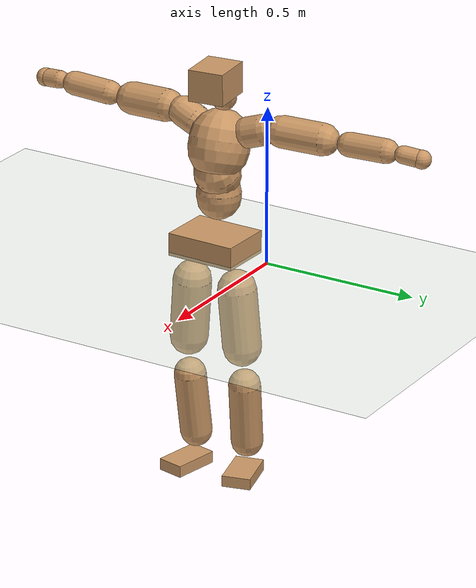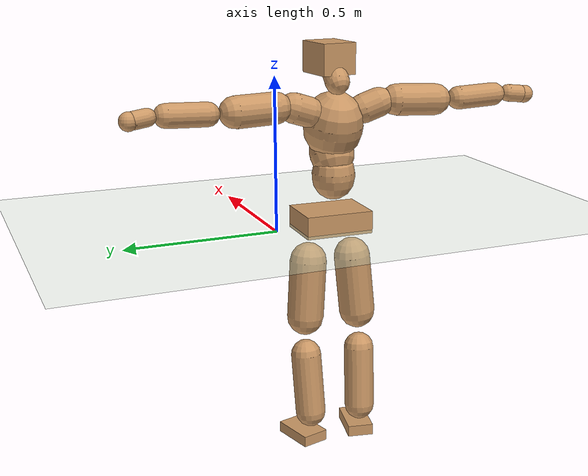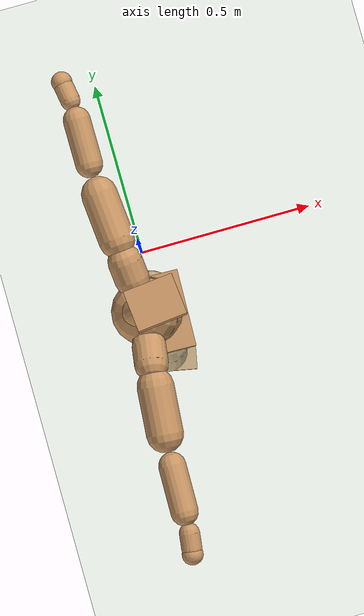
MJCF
<mujoco model="humanoid">
  <compiler coordinate="local" angle="radian"/>
  <default>
    <joint damping="0.0" armature="0.01" stiffness="0.0" limited="true"/>
    <geom conaffinity="1" condim="3" contype="7" margin="0.001" rgba="0.8 0.6 .4 1"/>
  </default>
  <asset>
    <texture type="skybox" builtin="gradient" rgb1=".4 .5 .6" rgb2="0 0 0" width="100" height="100"/>
    <texture builtin="flat" height="1278" mark="cross" markrgb="1 1 1" name="texgeom" random="0.01" rgb1="0.8 0.6 0.4" rgb2="0.8 0.6 0.4" type="cube" width="127"/>
    <texture builtin="checker" height="100" name="texplane" rgb1="0 0 0" rgb2="0.8 0.8 0.8" type="2d" width="100"/>
    <material name="MatPlane" reflectance="0.5" shininess="1" specular="1" texrepeat="60 60" texture="texplane"/>
    <material name="geom" texture="texgeom" texuniform="true"/>
  </asset>
  <worldbody>
    <light cutoff="100" diffuse="1 1 1" dir="-0 0 -1.3" directional="true" exponent="1" pos="0 0 1.3" specular=".1 .1 .1"/>
    <geom conaffinity="1" condim="3" name="floor" pos="0 0 0" rgba="0.8 0.9 0.8 1" size="100 100 .2" type="plane" material="MatPlane"/>
    <body name="Pelvis" pos="0.0002 -0.1865 0.0359">
      <freejoint name="Pelvis"/>
      <geom type="box" contype="1" conaffinity="1" density="500" pos="-0.0040 0.0001 -0.0116" size="0.0856 0.1119 0.0365" quat="0.9999 0.0000 0.0000 -0.0128" name="Pelvis"/>
      <body name="L_Hip" pos="-0.0004 0.0745 -0.081">
        <joint name="L_Hip_x" type="hinge" pos="0 0 0" axis="1 0 0" stiffness="800" damping="80" armature="0.02" range="-180.0000 180.0000"/>
        <joint name="L_Hip_y" type="hinge" pos="0 0 0" axis="0 1 0" stiffness="800" damping="80" armature="0.02" range="-180.0000 180.0000"/>
        <joint name="L_Hip_z" type="hinge" pos="0 0 0" axis="0 0 1" stiffness="800" damping="80" armature="0.02" range="-180.0000 180.0000"/>
        <geom type="capsule" contype="1" conaffinity="1" density="500" fromto="-0.0022 0.0047 -0.0641 -0.0089 0.0188 -0.2565" size="0.0604" name="L_Hip"/>
        <body name="L_Knee" pos="-0.0111 0.0234 -0.3206">
          <joint name="L_Knee_x" type="hinge" pos="0 0 0" axis="1 0 0" stiffness="800" damping="80" armature="0.02" range="-180.0000 180.0000"/>
          <joint name="L_Knee_y" type="hinge" pos="0 0 0" axis="0 1 0" stiffness="800" damping="80" armature="0.02" range="-180.0000 180.0000"/>
          <joint name="L_Knee_z" type="hinge" pos="0 0 0" axis="0 0 1" stiffness="800" damping="80" armature="0.02" range="-180.0000 180.0000"/>
          <geom type="capsule" contype="1" conaffinity="1" density="500" fromto="-0.0082 -0.0019 -0.0672 -0.0328 -0.0076 -0.2687" size="0.0503" name="L_Knee"/>
          <body name="L_Ankle" pos="-0.041 -0.0095 -0.3359">
            <joint name="L_Ankle_x" type="hinge" pos="0 0 0" axis="1 0 0" stiffness="800" damping="80" armature="0.02" range="-180.0000 180.0000"/>
            <joint name="L_Ankle_y" type="hinge" pos="0 0 0" axis="0 1 0" stiffness="800" damping="80" armature="0.02" range="-180.0000 180.0000"/>
            <joint name="L_Ankle_z" type="hinge" pos="0 0 0" axis="0 0 1" stiffness="800" damping="80" armature="0.02" range="-180.0000 180.0000"/>
            <geom type="box" contype="1" conaffinity="1" density="500" pos="0.0511 0.0131 -0.0246" size="0.0734 0.0453 0.018" quat="0.9921 0.0000 0.0000 0.1255" name="L_Ankle"/>
            <body name="L_Toe" pos="0.1022 0.0263 -0.0492">
              <joint name="L_Toe_x" type="hinge" pos="0 0 0" axis="1 0 0" stiffness="500" damping="50" armature="0.02" range="-180.0000 180.0000"/>
              <joint name="L_Toe_y" type="hinge" pos="0 0 0" axis="0 1 0" stiffness="500" damping="50" armature="0.02" range="-180.0000 180.0000"/>
              <joint name="L_Toe_z" type="hinge" pos="0 0 0" axis="0 0 1" stiffness="500" damping="50" armature="0.02" range="-180.0000 180.0000"/>
              <geom type="box" contype="1" conaffinity="1" density="500" pos="0.0000 0.0000 0.0250" size="0.0009 0.0022 0.0009" quat="0.9912 0.0000 0.0000 0.1321" name="L_Toe"/>
            </body>
          </body>
        </body>
      </body>
      <body name="R_Hip" pos="0.0022 -0.0736 -0.081">
        <joint name="R_Hip_x" type="hinge" pos="0 0 0" axis="1 0 0" stiffness="800" damping="80" armature="0.02" range="-180.0000 180.0000"/>
        <joint name="R_Hip_y" type="hinge" pos="0 0 0" axis="0 1 0" stiffness="800" damping="80" armature="0.02" range="-180.0000 180.0000"/>
        <joint name="R_Hip_z" type="hinge" pos="0 0 0" axis="0 0 1" stiffness="800" damping="80" armature="0.02" range="-180.0000 180.0000"/>
        <geom type="capsule" contype="1" conaffinity="1" density="500" fromto="-0.0023 -0.0058 -0.0653 -0.0094 -0.0232 -0.2614" size="0.0599" name="R_Hip"/>
        <body name="R_Knee" pos="-0.0117 -0.0291 -0.3267">
          <joint name="R_Knee_x" type="hinge" pos="0 0 0" axis="1 0 0" stiffness="800" damping="80" armature="0.02" range="-180.0000 180.0000"/>
          <joint name="R_Knee_y" type="hinge" pos="0 0 0" axis="0 1 0" stiffness="800" damping="80" armature="0.02" range="-180.0000 180.0000"/>
          <joint name="R_Knee_z" type="hinge" pos="0 0 0" axis="0 0 1" stiffness="800" damping="80" armature="0.02" range="-180.0000 180.0000"/>
          <geom type="capsule" contype="1" conaffinity="1" density="500" fromto="-0.0079 0.0023 -0.0679 -0.0317 0.0092 -0.2715" size="0.0506" name="R_Knee"/>
          <body name="R_Ankle" pos="-0.0396 0.0116 -0.3394">
            <joint name="R_Ankle_x" type="hinge" pos="0 0 0" axis="1 0 0" stiffness="800" damping="80" armature="0.02" range="-180.0000 180.0000"/>
            <joint name="R_Ankle_y" type="hinge" pos="0 0 0" axis="0 1 0" stiffness="800" damping="80" armature="0.02" range="-180.0000 180.0000"/>
            <joint name="R_Ankle_z" type="hinge" pos="0 0 0" axis="0 0 1" stiffness="800" damping="80" armature="0.02" range="-180.0000 180.0000"/>
            <geom type="box" contype="1" conaffinity="1" density="500" pos="0.0530 -0.0107 -0.0216" size="0.0746 0.0429 0.0188" quat="0.9951 0.0000 0.0000 -0.0992" name="R_Ankle"/>
            <body name="R_Toe" pos="0.106 -0.0214 -0.0432">
              <joint name="R_Toe_x" type="hinge" pos="0 0 0" axis="1 0 0" stiffness="500" damping="50" armature="0.02" range="-180.0000 180.0000"/>
              <joint name="R_Toe_y" type="hinge" pos="0 0 0" axis="0 1 0" stiffness="500" damping="50" armature="0.02" range="-180.0000 180.0000"/>
              <joint name="R_Toe_z" type="hinge" pos="0 0 0" axis="0 0 1" stiffness="500" damping="50" armature="0.02" range="-180.0000 180.0000"/>
              <geom type="box" contype="1" conaffinity="1" density="500" pos="0.0000 0.0000 0.0227" size="0.0009 0.0022 0.001" quat="0.9961 0.0000 0.0000 -0.0885" name="R_Toe"/>
            </body>
          </body>
        </body>
      </body>
      <body name="Torso" pos="-0.0255 -0.0003 0.0924">
        <joint name="Torso_x" type="hinge" pos="0 0 0" axis="1 0 0" stiffness="1000" damping="100" armature="0.02" range="-180.0000 180.0000"/>
        <joint name="Torso_y" type="hinge" pos="0 0 0" axis="0 1 0" stiffness="1000" damping="100" armature="0.02" range="-180.0000 180.0000"/>
        <joint name="Torso_z" type="hinge" pos="0 0 0" axis="0 0 1" stiffness="1000" damping="100" armature="0.02" range="-180.0000 180.0000"/>
        <geom type="capsule" contype="1" conaffinity="1" density="500" fromto="-0.0013 0.0007 0.0585 -0.0008 0.0005 0.0390" size="0.0691" name="Torso"/>
        <body name="Spine" pos="-0.0021 0.0012 0.0975">
          <joint name="Spine_x" type="hinge" pos="0 0 0" axis="1 0 0" stiffness="1000" damping="100" armature="0.02" range="-180.0000 180.0000"/>
          <joint name="Spine_y" type="hinge" pos="0 0 0" axis="0 1 0" stiffness="1000" damping="100" armature="0.02" range="-180.0000 180.0000"/>
          <joint name="Spine_z" type="hinge" pos="0 0 0" axis="0 0 1" stiffness="1000" damping="100" armature="0.02" range="-180.0000 180.0000"/>
          <geom type="capsule" contype="1" conaffinity="1" density="500" fromto="0.0138 0.0008 0.0255 0.0092 0.0006 0.0170" size="0.0721" name="Spine"/>
          <body name="Chest" pos="0.023 0.0014 0.0425">
            <joint name="Chest_x" type="hinge" pos="0 0 0" axis="1 0 0" stiffness="1000" damping="100" armature="0.02" range="-180.0000 180.0000"/>
            <joint name="Chest_y" type="hinge" pos="0 0 0" axis="0 1 0" stiffness="1000" damping="100" armature="0.02" range="-180.0000 180.0000"/>
            <joint name="Chest_z" type="hinge" pos="0 0 0" axis="0 0 1" stiffness="1000" damping="100" armature="0.02" range="-180.0000 180.0000"/>
            <geom type="capsule" contype="1" conaffinity="1" density="500" fromto="-0.0277 -0.0011 0.0853 -0.0185 -0.0007 0.0569" size="0.0946" name="Chest"/>
            <body name="Neck" pos="-0.0595 -0.0025 0.1984">
              <joint name="Neck_x" type="hinge" pos="0 0 0" axis="1 0 0" stiffness="500" damping="50" armature="0.02" range="-180.0000 180.0000"/>
              <joint name="Neck_y" type="hinge" pos="0 0 0" axis="0 1 0" stiffness="500" damping="50" armature="0.02" range="-180.0000 180.0000"/>
              <joint name="Neck_z" type="hinge" pos="0 0 0" axis="0 0 1" stiffness="500" damping="50" armature="0.02" range="-180.0000 180.0000"/>
              <geom type="capsule" contype="1" conaffinity="1" density="500" fromto="0.0084 0.0005 0.0107 0.0334 0.0020 0.0427" size="0.0391" name="Neck"/>
              <body name="Head" pos="0.0418 0.0025 0.0534">
                <joint name="Head_x" type="hinge" pos="0 0 0" axis="1 0 0" stiffness="500" damping="50" armature="0.02" range="-180.0000 180.0000"/>
                <joint name="Head_y" type="hinge" pos="0 0 0" axis="0 1 0" stiffness="500" damping="50" armature="0.02" range="-180.0000 180.0000"/>
                <joint name="Head_z" type="hinge" pos="0 0 0" axis="0 0 1" stiffness="500" damping="50" armature="0.02" range="-180.0000 180.0000"/>
                <geom type="box" contype="1" conaffinity="1" density="500" pos="0.0219 0.0023 0.0277" size="0.0686 0.0563 0.0494" quat="0.9987 0.0000 0.0000 0.0515" name="Head"/>
              </body>
            </body>
            <body name="L_Thorax" pos="-0.0375 0.0739 0.1145">
              <joint name="L_Thorax_x" type="hinge" pos="0 0 0" axis="1 0 0" stiffness="500" damping="50" armature="0.02" range="-180.0000 180.0000"/>
              <joint name="L_Thorax_y" type="hinge" pos="0 0 0" axis="0 1 0" stiffness="500" damping="50" armature="0.02" range="-180.0000 180.0000"/>
              <joint name="L_Thorax_z" type="hinge" pos="0 0 0" axis="0 0 1" stiffness="500" damping="50" armature="0.02" range="-180.0000 180.0000"/>
              <geom type="capsule" contype="1" conaffinity="1" density="500" fromto="-0.0017 0.0169 0.0056 -0.0068 0.0675 0.0224" size="0.0481" name="L_Thorax"/>
              <body name="L_Shoulder" pos="-0.0085 0.0844 0.028">
                <joint name="L_Shoulder_x" type="hinge" pos="0 0 0" axis="1 0 0" stiffness="500" damping="50" armature="0.02" range="-720.0000 720.0000"/>
                <joint name="L_Shoulder_y" type="hinge" pos="0 0 0" axis="0 1 0" stiffness="500" damping="50" armature="0.02" range="-720.0000 720.0000"/>
                <joint name="L_Shoulder_z" type="hinge" pos="0 0 0" axis="0 0 1" stiffness="500" damping="50" armature="0.02" range="-720.0000 720.0000"/>
                <geom type="capsule" contype="1" conaffinity="1" density="500" fromto="-0.0042 0.0447 -0.0008 -0.0166 0.1787 -0.0031" size="0.0498" name="L_Shoulder"/>
                <body name="L_Elbow" pos="-0.0208 0.2233 -0.0038">
                  <joint name="L_Elbow_x" type="hinge" pos="0 0 0" axis="1 0 0" stiffness="500" damping="50" armature="0.02" range="-720.0000 720.0000"/>
                  <joint name="L_Elbow_y" type="hinge" pos="0 0 0" axis="0 1 0" stiffness="500" damping="50" armature="0.02" range="-720.0000 720.0000"/>
                  <joint name="L_Elbow_z" type="hinge" pos="0 0 0" axis="0 0 1" stiffness="500" damping="50" armature="0.02" range="-720.0000 720.0000"/>
                  <geom type="capsule" contype="1" conaffinity="1" density="500" fromto="-0.0000 0.0417 0.0014 -0.0002 0.1667 0.0055" size="0.0375" name="L_Elbow"/>
                  <body name="L_Wrist" pos="-0.0002 0.2084 0.0069">
                    <joint name="L_Wrist_x" type="hinge" pos="0 0 0" axis="1 0 0" stiffness="300" damping="30" armature="0.02" range="-180.0000 180.0000"/>
                    <joint name="L_Wrist_y" type="hinge" pos="0 0 0" axis="0 1 0" stiffness="300" damping="30" armature="0.02" range="-180.0000 180.0000"/>
                    <joint name="L_Wrist_z" type="hinge" pos="0 0 0" axis="0 0 1" stiffness="300" damping="30" armature="0.02" range="-180.0000 180.0000"/>
                    <geom type="capsule" contype="1" conaffinity="1" density="500" fromto="-0.0023 0.0142 -0.0017 -0.0092 0.0568 -0.0068" size="0.0274" name="L_Wrist"/>
                    <body name="L_Hand" pos="-0.0115 0.071 -0.0085">
                      <joint name="L_Hand_x" type="hinge" pos="0 0 0" axis="1 0 0" stiffness="300" damping="30" armature="0.02" range="-180.0000 180.0000"/>
                      <joint name="L_Hand_y" type="hinge" pos="0 0 0" axis="0 1 0" stiffness="300" damping="30" armature="0.02" range="-180.0000 180.0000"/>
                      <joint name="L_Hand_z" type="hinge" pos="0 0 0" axis="0 0 1" stiffness="300" damping="30" armature="0.02" range="-180.0000 180.0000"/>
                      <geom type="sphere" contype="1" conaffinity="1" density="500" size="0.0288" pos="0.0000 0.0000 0.0000" name="L_Hand"/>
                    </body>
                  </body>
                </body>
              </body>
            </body>
            <body name="R_Thorax" pos="-0.0417 -0.0769 0.1136">
              <joint name="R_Thorax_x" type="hinge" pos="0 0 0" axis="1 0 0" stiffness="500" damping="50" armature="0.02" range="-180.0000 180.0000"/>
              <joint name="R_Thorax_y" type="hinge" pos="0 0 0" axis="0 1 0" stiffness="500" damping="50" armature="0.02" range="-180.0000 180.0000"/>
              <joint name="R_Thorax_z" type="hinge" pos="0 0 0" axis="0 0 1" stiffness="500" damping="50" armature="0.02" range="-180.0000 180.0000"/>
              <geom type="capsule" contype="1" conaffinity="1" density="500" fromto="-0.0023 -0.0172 0.0062 -0.0091 -0.0687 0.0250" size="0.0471" name="R_Thorax"/>
              <body name="R_Shoulder" pos="-0.0113 -0.0858 0.0312">
                <joint name="R_Shoulder_x" type="hinge" pos="0 0 0" axis="1 0 0" stiffness="500" damping="50" armature="0.02" range="-720.0000 720.0000"/>
                <joint name="R_Shoulder_y" type="hinge" pos="0 0 0" axis="0 1 0" stiffness="500" damping="50" armature="0.02" range="-720.0000 720.0000"/>
                <joint name="R_Shoulder_z" type="hinge" pos="0 0 0" axis="0 0 1" stiffness="500" damping="50" armature="0.02" range="-720.0000 720.0000"/>
                <geom type="capsule" contype="1" conaffinity="1" density="500" fromto="-0.0034 -0.0439 -0.0018 -0.0137 -0.1755 -0.0072" size="0.0509" name="R_Shoulder"/>
                <body name="R_Elbow" pos="-0.0171 -0.2193 -0.009">
                  <joint name="R_Elbow_x" type="hinge" pos="0 0 0" axis="1 0 0" stiffness="500" damping="50" armature="0.02" range="-720.0000 720.0000"/>
                  <joint name="R_Elbow_y" type="hinge" pos="0 0 0" axis="0 1 0" stiffness="500" damping="50" armature="0.02" range="-720.0000 720.0000"/>
                  <joint name="R_Elbow_z" type="hinge" pos="0 0 0" axis="0 0 1" stiffness="500" damping="50" armature="0.02" range="-720.0000 720.0000"/>
                  <geom type="capsule" contype="1" conaffinity="1" density="500" fromto="-0.0006 -0.0431 0.0016 -0.0023 -0.1724 0.0066" size="0.0377" name="R_Elbow"/>
                  <body name="R_Wrist" pos="-0.0028 -0.2155 0.0082">
                    <joint name="R_Wrist_x" type="hinge" pos="0 0 0" axis="1 0 0" stiffness="300" damping="30" armature="0.02" range="-180.0000 180.0000"/>
                    <joint name="R_Wrist_y" type="hinge" pos="0 0 0" axis="0 1 0" stiffness="300" damping="30" armature="0.02" range="-180.0000 180.0000"/>
                    <joint name="R_Wrist_z" type="hinge" pos="0 0 0" axis="0 0 1" stiffness="300" damping="30" armature="0.02" range="-180.0000 180.0000"/>
                    <geom type="capsule" contype="1" conaffinity="1" density="500" fromto="-0.0019 -0.0144 -0.0013 -0.0075 -0.0578 -0.0053" size="0.0283" name="R_Wrist"/>
                    <body name="R_Hand" pos="-0.0094 -0.0722 -0.0067">
                      <joint name="R_Hand_x" type="hinge" pos="0 0 0" axis="1 0 0" stiffness="300" damping="30" armature="0.02" range="-180.0000 180.0000"/>
                      <joint name="R_Hand_y" type="hinge" pos="0 0 0" axis="0 1 0" stiffness="300" damping="30" armature="0.02" range="-180.0000 180.0000"/>
                      <joint name="R_Hand_z" type="hinge" pos="0 0 0" axis="0 0 1" stiffness="300" damping="30" armature="0.02" range="-180.0000 180.0000"/>
                      <geom type="sphere" contype="1" conaffinity="1" density="500" size="0.0293" pos="0.0000 0.0000 0.0000" name="R_Hand"/>
                    </body>
                  </body>
                </body>
              </body>
            </body>
          </body>
        </body>
      </body>
    </body>
  </worldbody>
  <actuator>
    <motor name="L_Hip_x" joint="L_Hip_x" gear="500"/>
    <motor name="L_Hip_y" joint="L_Hip_y" gear="500"/>
    <motor name="L_Hip_z" joint="L_Hip_z" gear="500"/>
    <motor name="L_Knee_x" joint="L_Knee_x" gear="500"/>
    <motor name="L_Knee_y" joint="L_Knee_y" gear="500"/>
    <motor name="L_Knee_z" joint="L_Knee_z" gear="500"/>
    <motor name="L_Ankle_x" joint="L_Ankle_x" gear="500"/>
    <motor name="L_Ankle_y" joint="L_Ankle_y" gear="500"/>
    <motor name="L_Ankle_z" joint="L_Ankle_z" gear="500"/>
    <motor name="L_Toe_x" joint="L_Toe_x" gear="500"/>
    <motor name="L_Toe_y" joint="L_Toe_y" gear="500"/>
    <motor name="L_Toe_z" joint="L_Toe_z" gear="500"/>
    <motor name="R_Hip_x" joint="R_Hip_x" gear="500"/>
    <motor name="R_Hip_y" joint="R_Hip_y" gear="500"/>
    <motor name="R_Hip_z" joint="R_Hip_z" gear="500"/>
    <motor name="R_Knee_x" joint="R_Knee_x" gear="500"/>
    <motor name="R_Knee_y" joint="R_Knee_y" gear="500"/>
    <motor name="R_Knee_z" joint="R_Knee_z" gear="500"/>
    <motor name="R_Ankle_x" joint="R_Ankle_x" gear="500"/>
    <motor name="R_Ankle_y" joint="R_Ankle_y" gear="500"/>
    <motor name="R_Ankle_z" joint="R_Ankle_z" gear="500"/>
    <motor name="R_Toe_x" joint="R_Toe_x" gear="500"/>
    <motor name="R_Toe_y" joint="R_Toe_y" gear="500"/>
    <motor name="R_Toe_z" joint="R_Toe_z" gear="500"/>
    <motor name="Torso_x" joint="Torso_x" gear="500"/>
    <motor name="Torso_y" joint="Torso_y" gear="500"/>
    <motor name="Torso_z" joint="Torso_z" gear="500"/>
    <motor name="Spine_x" joint="Spine_x" gear="500"/>
    <motor name="Spine_y" joint="Spine_y" gear="500"/>
    <motor name="Spine_z" joint="Spine_z" gear="500"/>
    <motor name="Chest_x" joint="Chest_x" gear="500"/>
    <motor name="Chest_y" joint="Chest_y" gear="500"/>
    <motor name="Chest_z" joint="Chest_z" gear="500"/>
    <motor name="Neck_x" joint="Neck_x" gear="500"/>
    <motor name="Neck_y" joint="Neck_y" gear="500"/>
    <motor name="Neck_z" joint="Neck_z" gear="500"/>
    <motor name="Head_x" joint="Head_x" gear="500"/>
    <motor name="Head_y" joint="Head_y" gear="500"/>
    <motor name="Head_z" joint="Head_z" gear="500"/>
    <motor name="L_Thorax_x" joint="L_Thorax_x" gear="500"/>
    <motor name="L_Thorax_y" joint="L_Thorax_y" gear="500"/>
    <motor name="L_Thorax_z" joint="L_Thorax_z" gear="500"/>
    <motor name="L_Shoulder_x" joint="L_Shoulder_x" gear="500"/>
    <motor name="L_Shoulder_y" joint="L_Shoulder_y" gear="500"/>
    <motor name="L_Shoulder_z" joint="L_Shoulder_z" gear="500"/>
    <motor name="L_Elbow_x" joint="L_Elbow_x" gear="500"/>
    <motor name="L_Elbow_y" joint="L_Elbow_y" gear="500"/>
    <motor name="L_Elbow_z" joint="L_Elbow_z" gear="500"/>
    <motor name="L_Wrist_x" joint="L_Wrist_x" gear="500"/>
    <motor name="L_Wrist_y" joint="L_Wrist_y" gear="500"/>
    <motor name="L_Wrist_z" joint="L_Wrist_z" gear="500"/>
    <motor name="L_Hand_x" joint="L_Hand_x" gear="500"/>
    <motor name="L_Hand_y" joint="L_Hand_y" gear="500"/>
    <motor name="L_Hand_z" joint="L_Hand_z" gear="500"/>
    <motor name="R_Thorax_x" joint="R_Thorax_x" gear="500"/>
    <motor name="R_Thorax_y" joint="R_Thorax_y" gear="500"/>
    <motor name="R_Thorax_z" joint="R_Thorax_z" gear="500"/>
    <motor name="R_Shoulder_x" joint="R_Shoulder_x" gear="500"/>
    <motor name="R_Shoulder_y" joint="R_Shoulder_y" gear="500"/>
    <motor name="R_Shoulder_z" joint="R_Shoulder_z" gear="500"/>
    <motor name="R_Elbow_x" joint="R_Elbow_x" gear="500"/>
    <motor name="R_Elbow_y" joint="R_Elbow_y" gear="500"/>
    <motor name="R_Elbow_z" joint="R_Elbow_z" gear="500"/>
    <motor name="R_Wrist_x" joint="R_Wrist_x" gear="500"/>
    <motor name="R_Wrist_y" joint="R_Wrist_y" gear="500"/>
    <motor name="R_Wrist_z" joint="R_Wrist_z" gear="500"/>
    <motor name="R_Hand_x" joint="R_Hand_x" gear="500"/>
    <motor name="R_Hand_y" joint="R_Hand_y" gear="500"/>
    <motor name="R_Hand_z" joint="R_Hand_z" gear="500"/>
  </actuator>
  <contact>
    <exclude body1="Torso" body2="Chest"/>
    <exclude body1="Head" body2="Chest"/>
    <exclude body1="R_Knee" body2="R_Toe"/>
    <exclude body1="R_Knee" body2="L_Ankle"/>
    <exclude body1="R_Knee" body2="L_Toe"/>
    <exclude body1="L_Knee" body2="L_Toe"/>
    <exclude body1="L_Knee" body2="R_Ankle"/>
    <exclude body1="L_Knee" body2="R_Toe"/>
    <exclude body1="L_Shoulder" body2="Chest"/>
    <exclude body1="R_Shoulder" body2="Chest"/>
  </contact>
  <sensor/>
  <size njmax="700" nconmax="700"/>
</mujoco>
